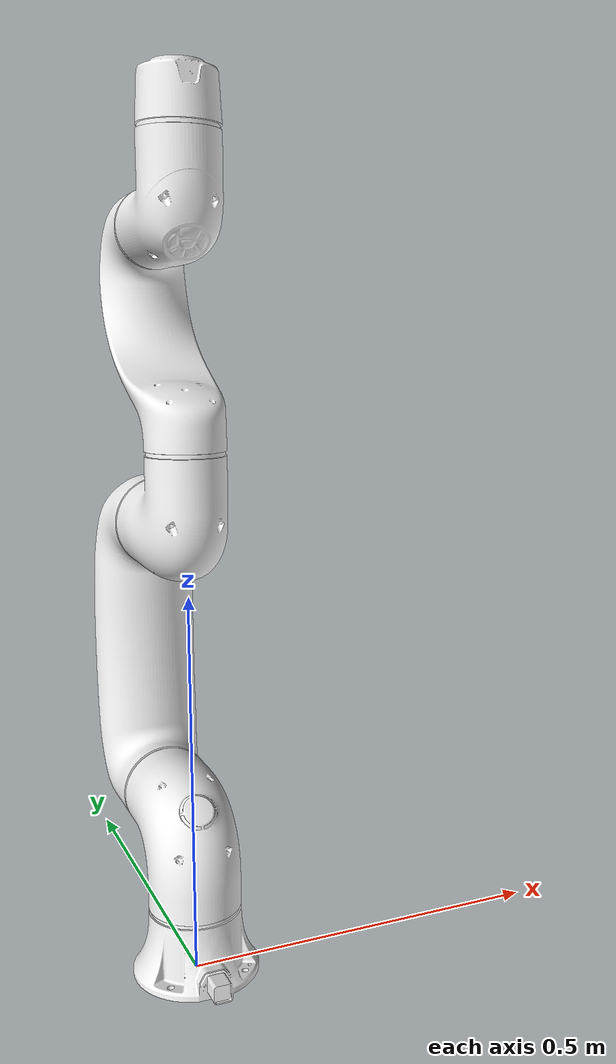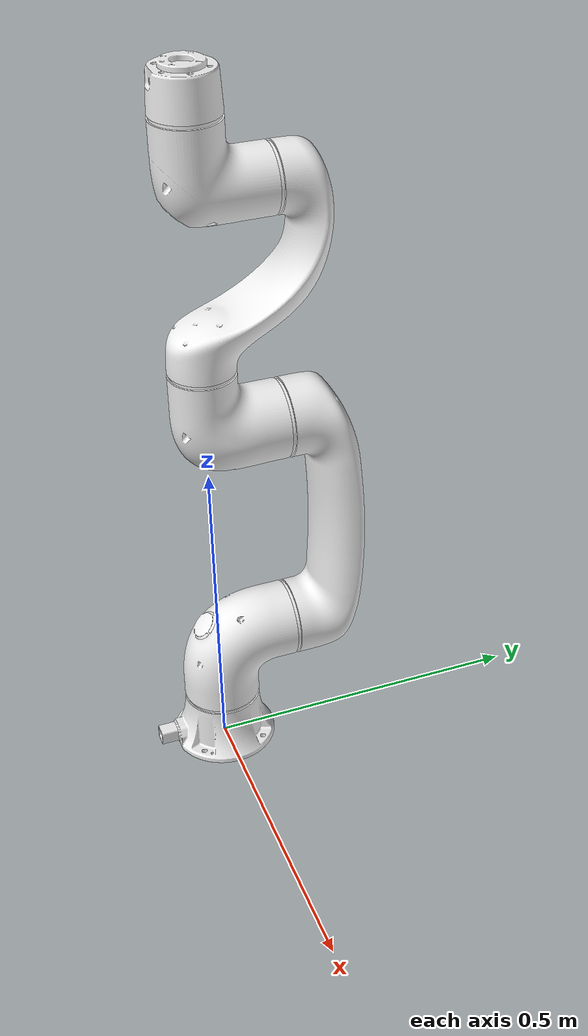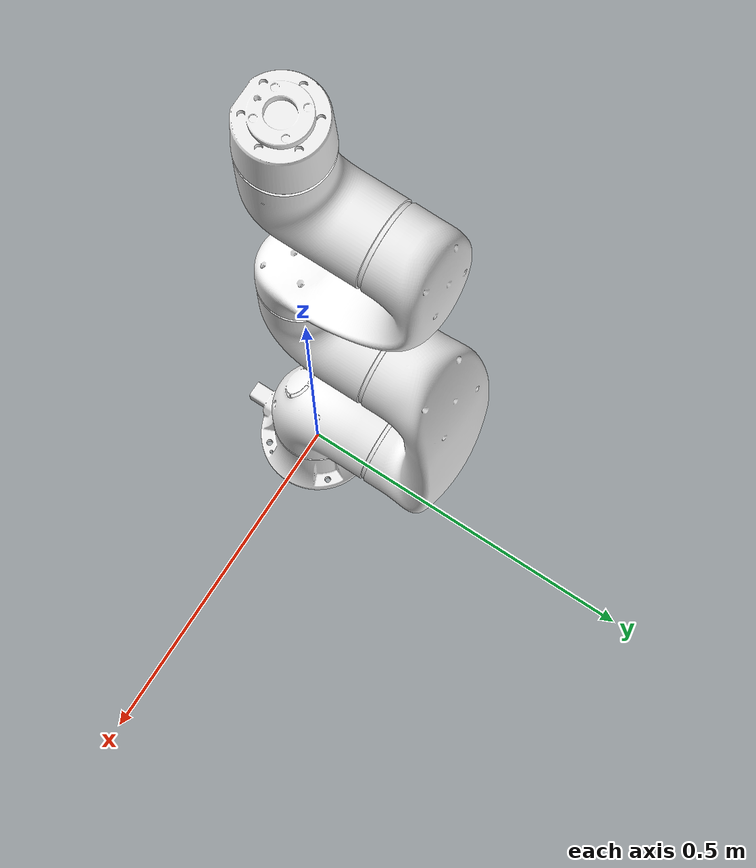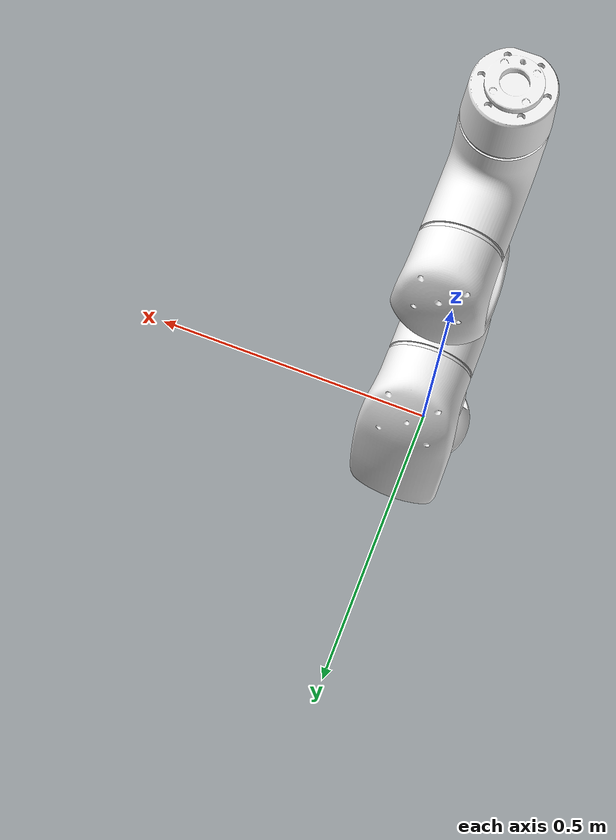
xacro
<?xml version="1.0"?>
<robot xmlns:xacro="http://www.ros.org/wiki/xacro" name="e0509">

  <!-- Args -->
  <xacro:arg name="mode"                default="virtual"/>
  <xacro:arg name="color"               default="white"/>
  <xacro:arg name="namespace"           default=""/>

  <!-- gripper control argument -->
  <xacro:arg name="gripper"             default="none"/>         <!-- none | robotique -->
  <xacro:arg name="gripper_prefix"      default=""/>             <!-- ex) dsr01_ -->
  <xacro:arg name="gripper_parent_link" default="link_6"/>

  <xacro:arg name="use_gazebo"          default="false"/>
  <xacro:arg name="use_mujoco"          default="false"/>
  <xacro:arg name="mujoco_model"        default=""/>
  <xacro:arg name="headless"            default="false"/>
  <xacro:arg name="host"                default=""/>
  <xacro:arg name="port"                default=""/>
  <xacro:arg name="rt_host"             default=""/>
  <xacro:arg name="rt_thread_policy"  default=""/>
  <xacro:arg name="rt_thread_priority"  default=""/>
  <xacro:arg name="mode"                default=""/>
  <xacro:arg name="model"               default=""/>
  <xacro:arg name="update_rate"         default=""/>

  <!-- Local properties -->
  <xacro:property name="cr"             value="$(arg color)"/>
  <xacro:property name="gr"             value="$(arg gripper)"/>
  <xacro:property name="gz"             value="$(arg use_gazebo)"/>
  <xacro:property name="mj"             value="$(arg use_mujoco)"/>
  <xacro:property name="host"           value="$(arg host)"/>
  <xacro:property name="rt_host"        value="$(arg rt_host)"/>
  <xacro:property name="rt_thread_policy" value="$(arg rt_thread_policy)"/>
  <xacro:property name="rt_thread_priority" value="$(arg rt_thread_priority)"/>
  <xacro:property name="port"           value="$(arg port)"/>
  <xacro:property name="mode"           value="$(arg mode)"/>
  <xacro:property name="model"          value="$(arg model)"/>
  <xacro:property name="update_rate"    value="$(arg update_rate)"/>

  <!-- Visual -->
  <xacro:if value="${cr == 'white'}">
    <xacro:include filename="$(find dsr_description2)/xacro/macro.e0509.white.xacro"/>
  </xacro:if>
  <xacro:if value="${cr == 'blue'}">
    <xacro:include filename="$(find dsr_description2)/xacro/macro.e0509.blue.xacro"/>
  </xacro:if>

  <xacro:e0509 namespace="$(arg namespace)"/>

  <!-- World -->
  <link name="world"/>
  <joint name="world_fixed" type="fixed">
    <origin xyz="0 0 0" rpy="0 0 0"/>
    <parent link="world"/>
    <child  link="base_link"/>
  </joint>

  <!-- Gazebo -->
  <xacro:if value="${gz}">
    <xacro:include filename="$(find dsr_description2)/ros2_control/e0509.gz_ros2_control.xacro"/>
    <xacro:e0509_gz_ros2_control
      namespace="$(arg namespace)"
      update_rate="${update_rate}"
    />
  </xacro:if>
  <!-- MuJoCo -->
  <xacro:if value="${mj and not gz}">
    <xacro:include filename="$(find dsr_description2)/ros2_control/e0509.mj_ros2_control.xacro"/>
    <xacro:e0509_mj_ros2_control
      namespace="$(arg namespace)"
      gripper="$(arg gripper)"
      mujoco_model="$(arg mujoco_model)"
      headless="$(arg headless)"
      update_rate="${update_rate}"
    />
  </xacro:if>
  <!-- Default ros2_control -->
  <xacro:unless value="${gz or mj}">
    <xacro:include filename="$(find dsr_description2)/ros2_control/e0509.ros2_control.xacro" />
    <xacro:e0509_ros2_control
      name="e0509"
      host="${host}"
      rt_host="${rt_host}"
      rt_thread_policy="${rt_thread_policy}"
      rt_thread_priority="${rt_thread_priority}"
      port="${port}"
      mode="${mode}"
      model="${model}"
      update_rate="${update_rate}"
    />
  </xacro:unless>

  <xacro:if value="${gr == 'robotiq_2f85'}">

    <xacro:include filename="$(find dsr_description2)/gripper/robotiq.xacro"/>
    <xacro:robotiq_85
      parent="$(arg gripper_parent_link)"
      prefix="$(arg gripper_prefix)"/>

    <xacro:include filename="$(find dsr_description2)/gripper/robotiq.ros2_control.xacro"/>
      <xacro:robotiq_gripper_system
      mode="$(arg mode)"
      joint_name="$(arg gripper_prefix)robotiq_85_left_knuckle_joint"
      system_name="$(arg gripper_prefix)robotiq_gripper_system"
      pos_min="0.0"
      pos_max="0.8"
      init_pos="0.0"
      speed_mult="1.0"
      force_mult="0.5"
      max_speed="0.150"
      max_force="235.0"
      mock_sensor_commands="true" />

  </xacro:if>

</robot>

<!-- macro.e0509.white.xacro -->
<robot name="e0509" xmlns:xacro="http://www.ros.org/wiki/xacro">
	<xacro:include filename="$(find dsr_description2)/config/macro.gazebo.xacro" />
	<xacro:include filename="$(find dsr_description2)/config/macro.transmission.xacro" />
	<xacro:include filename="$(find dsr_description2)/config/macro.materials.xacro" />
	<xacro:macro name="e0509" params="namespace">
		<xacro:dsr_materials />
		<link name="base_link">
			<inertial>
        <mass value="1.803"/>
        <origin xyz="2.7e-05   -0.002651    0.035122"/>
        <inertia ixx="0.010608" ixy="1.7706e-06" ixz="6.6982e-06" iyy="0.0092656" iyz="-4.7833e-05" izz="0.0092125"/>
      </inertial>
	  		<collision>
				<origin rpy="0 0 0" xyz="0 0 0" />
				<geometry>
					<mesh filename="package://dsr_description2/meshes/e0509_collision/E0509_0_0.dae" scale="0.001 0.001 0.001" />
				</geometry>
				<material name="dr_white" />
			</collision>
			<visual>
				<origin rpy="0 0 0" xyz="0 0 0" />
				<geometry>
					<mesh filename="package://dsr_description2/meshes/e0509_white/E0509_0_0.dae" scale="0.001 0.001 0.001" />
				</geometry>
				<material name="dr_white" />
			</visual>
		</link>
		<!-- joint 1 -->
		<joint name="joint_1" type="revolute">
			<parent link="base_link" />
			<child link="link_1" />
			<origin rpy="0 0 0" xyz="0 0 0.2045"/>
      <axis xyz="0 0 1"/>
      <limit effort="194" lower="-6.2832" upper="6.2832" velocity="3.1416"/>
		<dynamics friction="0" />
		</joint>
		<link name="link_1">
		<inertial>
			<mass value="5.75"/>
			<origin xyz="1e-06    0.049633   -0.049635"/>
			<inertia ixx="0.046214" ixy="1.4982e-05" ixz="1.281e-05" iyy="0.032573" iyz="-0.013997" izz="0.030999"/>
		</inertial>
		<collision>
			<origin rpy="0 0 0" xyz="0 0 0" />
			<geometry>
				<mesh filename="package://dsr_description2/meshes/e0509_collision/E0509_1_1.dae" scale="0.001 0.001 0.001"
				/>
			</geometry>
			<material name="dr_white" />
		</collision>
      		<visual>
			<origin rpy="0 0 0" xyz="0 0 0" />
			<geometry>
				<mesh filename="package://dsr_description2/meshes/e0509_white/E0509_1_1.dae" scale="0.001 0.001 0.001" />
			</geometry>
			<material name="dr_white" />
		</visual>
		<collision>
			<origin rpy="0 0 0" xyz="0 0 0" />
			<geometry>
				<mesh filename="package://dsr_description2/meshes/e0509_collision/E0509_1_2.dae" scale="0.001 0.001 0.001" />
			</geometry>
			<material name="dr_white" />
		</collision>
		<visual>
			<origin rpy="0 0 0" xyz="0 0 0" />
			<geometry>
				<mesh filename="package://dsr_description2/meshes/e0509_white/E0509_1_2.dae" scale="0.001 0.001 0.001" />
			</geometry>
			<material name="dr_white" />
		</visual>
		<collision>
			<origin rpy="0 0 0" xyz="0 0 0" />
			<geometry>
				<mesh filename="package://dsr_description2/meshes/e0509_collision/E0509_1_3.dae" scale="0.001 0.001 0.001" />
			</geometry>
			<material name="dr_white" />
		</collision>
      		<visual>
			<origin rpy="0 0 0" xyz="0 0 0" />
			<geometry>
				<mesh filename="package://dsr_description2/meshes/e0509_white/E0509_1_3.dae" scale="0.001 0.001 0.001" />
			</geometry>
			<material name="dr_white" />
		</visual>
		<collision>
			<origin rpy="0 0 0" xyz="0 0 0" />
			<geometry>
				<mesh filename="package://dsr_description2/meshes/e0509_collision/E0509_1_4.dae" scale="0.001 0.001 0.001" />
			</geometry>
			<material name="dr_white" />
		</collision>
            	<visual>
			<origin rpy="0 0 0" xyz="0 0 0" />
			<geometry>
				<mesh filename="package://dsr_description2/meshes/e0509_white/E0509_1_4.dae" scale="0.001 0.001 0.001" />
			</geometry>
			<material name="dr_white" />
		</visual>
		</link>
		<!-- joint2 -->
		<joint name="joint_2" type="revolute">
			<parent link="link_1" />
			<child link="link_2" />
			<origin rpy="0 -1.5708 -1.5708" xyz="0 0 0"/>
      <axis xyz="0 0 1"/>
      <limit effort="194" lower="-6.2832" upper="6.2832" velocity="3.1416"/>
			<dynamics friction="0" />
		</joint>
		<link name="link_2">
			<inertial>
				<mass value="3.461"/>
        <origin xyz="0.18647 -1.1418e-17     0.17311"/>
        <inertia ixx="0.012039" ixy="7.7771e-06" ixz="3.7559e-06" iyy="0.091203" iyz="3.1825e-06" izz="0.094721"/>
			</inertial>
            <collision>
				<origin rpy="0 0 0" xyz="0 0 0" />
				<geometry>
					<mesh filename="package://dsr_description2/meshes/e0509_collision/E0509_2_1.dae" scale="0.001 0.001 0.001" />
				</geometry>
				<material name="dr_white" />
			</collision>
			<visual>
				<origin rpy="0 0 0" xyz="0 0 0" />
				<geometry>
					<mesh filename="package://dsr_description2/meshes/e0509_white/E0509_2_1.dae" scale="0.001 0.001 0.001" />
				</geometry>
				<material name="dr_white" />
			</visual>
			<collision>
				<origin rpy="0 0 0" xyz="0 0 0" />
				<geometry>
					<mesh filename="package://dsr_description2/meshes/e0509_collision/E0509_2_2.dae" scale="0.001 0.001 0.001" />
				</geometry>
				<material name="dr_white" />
			</collision>
			<visual>
				<origin rpy="0 0 0" xyz="0 0 0" />
				<geometry>
					<mesh filename="package://dsr_description2/meshes/e0509_white/E0509_2_2.dae" scale="0.001 0.001 0.001" />
				</geometry>
				<material name="dr_white" />
			</visual>
		</link>
		<!-- joint3 -->
		<joint name="joint_3" type="revolute">
			<parent link="link_2" />
			<child link="link_3" />
			<origin rpy="0 0 1.5708" xyz="0.373 0 0"/>
      <axis xyz="0 0 1"/>
      <limit effort="194" lower="-2.7053" upper="2.7053" velocity="3.1416"/>
			<dynamics friction="0" />
		</joint>
		<link name="link_3">
			<inertial>
				<mass value="4.582"/>
       <origin xyz="1.2e-05    -0.02919    0.062355"/>
        <inertia ixx="0.032606" ixy="6.548e-06" ixz="-6.9939e-07" iyy="0.024211" iyz="-0.0079929" izz="0.019284"/>
			</inertial>
			<collision>
				<origin rpy="0 0 0" xyz="0 0 0" />
				<geometry>
					<mesh filename="package://dsr_description2/meshes/e0509_collision/E0509_3_1.dae" scale="0.001 0.001 0.001" />
				</geometry>
				<material name="dr_white" />
			</collision>
			<visual>
				<origin rpy="0 0 0" xyz="0 0 0" />
				<geometry>
					<mesh filename="package://dsr_description2/meshes/e0509_white/E0509_3_1.dae" scale="0.001 0.001 0.001" />
				</geometry>
				<material name="dr_white" />
			</visual>
			<collision>
				<origin rpy="0 0 0" xyz="0 0 0" />
				<geometry>
					<mesh filename="package://dsr_description2/meshes/e0509_collision/E0509_3_2.dae" scale="0.001 0.001 0.001" />
				</geometry>
				<material name="dr_white" />
			</collision>
            <visual>
				<origin rpy="0 0 0" xyz="0 0 0" />
				<geometry>
					<mesh filename="package://dsr_description2/meshes/e0509_white/E0509_3_2.dae" scale="0.001 0.001 0.001" />
				</geometry>
				<material name="dr_white" />
			</visual>
		</link>
		<!-- joint4 -->
		<joint name="joint_4" type="revolute">
			<parent link="link_3" />
			<child link="link_4" />
			<origin rpy="1.5708 0 0" xyz="0 -0.373 0"/>
      <axis xyz="0 0 1"/>
      <limit effort="66" lower="-6.2832" upper="6.2832" velocity="3.927"/>
			<dynamics friction="0" />
		</joint>
		<link name="link_4">
			<inertial>
				<mass value="2.207"/>
        <origin xyz="4e-06    0.095573    -0.12813"/>
        <inertia ixx="0.03547" ixy="8.0794e-06" ixz="7.9905e-06" iyy="0.030841" iyz="-0.011996" izz="0.019615"/>
			</inertial>
            <collision>
				<origin rpy="0 0 0" xyz="0 0 0" />
				<geometry>
					<mesh filename="package://dsr_description2/meshes/e0509_collision/E0509_4_1.dae" scale="0.001 0.001 0.001" />
				</geometry>
				<material name="dr_white" />
			</collision>
			<visual>
				<origin rpy="0 0 0" xyz="0 0 0" />
				<geometry>
					<mesh filename="package://dsr_description2/meshes/e0509_white/E0509_4_1.dae" scale="0.001 0.001 0.001" />
				</geometry>
				<material name="dr_white" />
			</visual>
			<collision>
				<origin rpy="0 0 0" xyz="0 0 0" />
				<geometry>
					<mesh filename="package://dsr_description2/meshes/e0509_collision/E0509_4_2.dae" scale="0.001 0.001 0.001" />
				</geometry>
				<material name="dr_white" />
			</collision>
			<visual>
				<origin rpy="0 0 0" xyz="0 0 0" />
				<geometry>
					<mesh filename="package://dsr_description2/meshes/e0509_white/E0509_4_2.dae" scale="0.001 0.001 0.001" />
				</geometry>
				<material name="dr_white" />
			</visual>
		</link>
		<!-- joint5 -->
		<joint name="joint_5" type="revolute">
			<parent link="link_4" />
			<child link="link_5" />
			<origin rpy="-1.5708 0 0" xyz="0 0 0"/>
      <axis xyz="0 0 1"/>
     <limit effort="66" lower="-6.2832" upper="6.2832" velocity="3.927"/>
			<dynamics friction="0" />
		</joint>
		<link name="link_5">
			<inertial>
				<mass value="3.545"/>
        <origin xyz="-3e-06 -0.038009 0.043841"/>
        <inertia ixx="0.023526" ixy="9.9368e-06" ixz="7.6673e-06" iyy="0.018415" iyz="-0.0059939" izz="0.014249"/>
			</inertial>
            <collision>
				<origin rpy="0 0 0" xyz="0 0 0" />
				<geometry>
					<mesh filename="package://dsr_description2/meshes/e0509_collision/E0509_5_1.dae" scale="0.001 0.001 0.001" />
				</geometry>
				<material name="dr_white" />
			</collision>
			<visual>
				<origin rpy="0 0 0" xyz="0 0 0" />
				<geometry>
					<mesh filename="package://dsr_description2/meshes/e0509_white/E0509_5_1.dae" scale="0.001 0.001 0.001" />
				</geometry>
				<material name="dr_white" />
			</visual>
			<collision>
				<origin rpy="0 0 0" xyz="0 0 0" />
				<geometry>
					<mesh filename="package://dsr_description2/meshes/e0509_collision/E0509_5_2.dae" scale="0.001 0.001 0.001" />
				</geometry>
				<material name="dr_white" />
			</collision>
            <visual>
				<origin rpy="0 0 0" xyz="0 0 0" />
				<geometry>
					<mesh filename="package://dsr_description2/meshes/e0509_white/E0509_5_2.dae" scale="0.001 0.001 0.001" />
				</geometry>
				<material name="dr_white" />
			</visual>
		</link>
		<!-- joint6 -->
		<joint name="joint_6" type="revolute">
			<parent link="link_5" />
			<child link="link_6" />
			<origin rpy="1.5708 0 0" xyz="0 -0.1725 0"/>
      <axis xyz="0 0 1"/>
      <limit effort="66" lower="-6.2832" upper="6.2832" velocity="3.927"/>
			<dynamics friction="0" />
		</joint>
		<link name="link_6">
			<inertial>
				<mass value="0.721"/>
        <origin xyz="5.4e-05   -0.000114   -0.032091"/>
        <inertia ixx="0.0048272" ixy="5.6302e-06" ixz="5.5274e-06" iyy="0.0046772" iyz="3.9598e-06" izz="0.0079424"/>
			</inertial>
			<collision>
				<origin rpy="0 0 0" xyz="0 0 0" />
				<geometry>
					<mesh filename="package://dsr_description2/meshes/e0509_collision/E0509_6_1.dae" scale="0.001 0.001 0.001" />
				</geometry>
				<material name="dr_white" />
			</collision>
			<visual>
				<origin rpy="0 0 0" xyz="0 0 0" />
				<geometry>
					<mesh filename="package://dsr_description2/meshes/e0509_white/E0509_6_1.dae" scale="0.001 0.001 0.001" />
				</geometry>
				<material name="dr_white" />
			</visual>
		</link>
		<xacro:dsr_transmission />
		<xacro:dsr_gazebo namespace="${namespace}" />
	</xacro:macro>
</robot>

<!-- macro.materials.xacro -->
<robot name="dsr_materials" xmlns:xacro="http://www.ros.org/wiki/xacro">
	<xacro:macro name="dsr_materials">
		<material name="black">
			<color rgba="0.0 0.0 0.0 1.0" />
		</material>
		<material name="white">
			<color rgba="1.0 1.0 1.0 1.0" />
		</material>
		<material name="orange">
			<color rgba="1.0 0.4 0.0 1.0" />
		</material>
		<material name="dr_gray">
			<color rgba="0.490 0.490 0.486 1.0" />
		</material>
		<material name="dr_white">
			<color rgba="0.941 0.941 0.941 1.0" />
		</material>
		<material name="dr_blue">
			<color rgba="0 0 0.15 1" />
		</material>
	</xacro:macro>
</robot>
